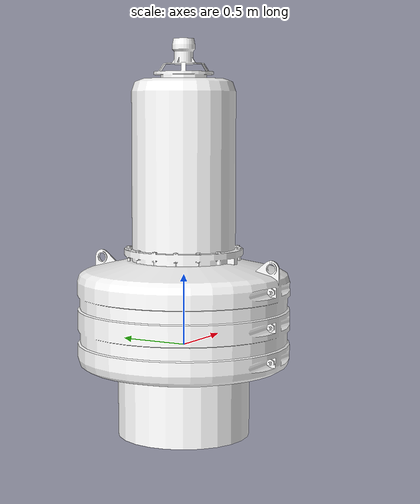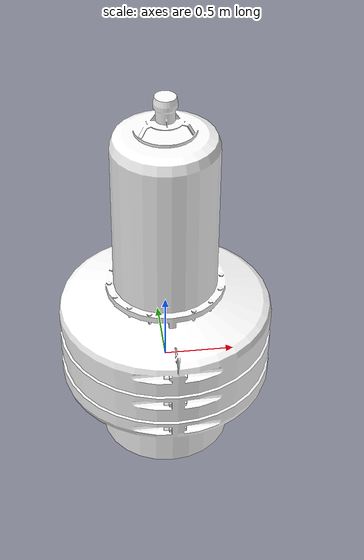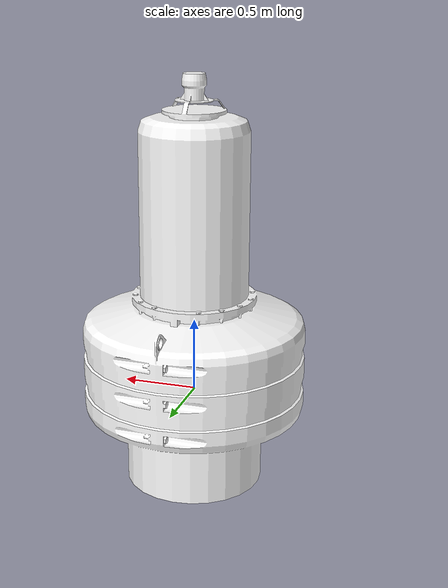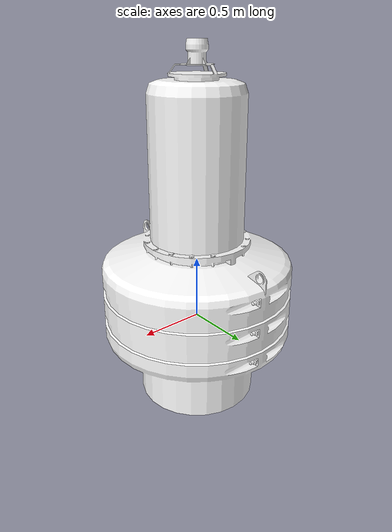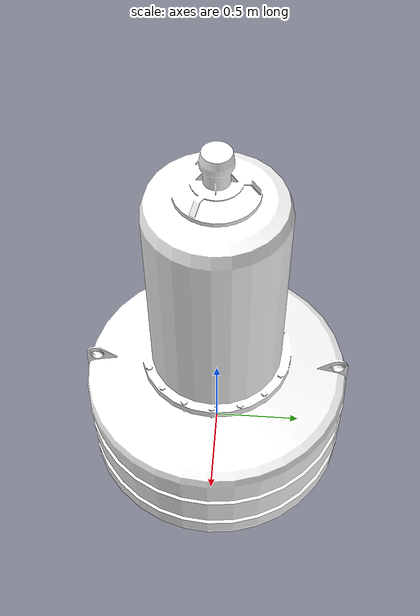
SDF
<?xml version="1.0"?>
<sdf version="1.6">
  <model name="buoy_red">
    <static>false</static>
    <link name="base_link">
      <inertial>
        <pose>0 0 0 0 0 0</pose>
        <mass>355</mass>
        <inertia>
          <ixx>142.0</ixx>
          <ixy>0</ixy>
          <ixz>0</ixz>
          <iyy>142.0</iyy>
          <iyz>0</iyz>
          <izz>63</izz>
        </inertia>
      </inertial>
      <collision name="collision_inner">
        <pose>0 0 1.225 0 0 0</pose>
        <geometry>
          <cylinder>
            <radius>0.425</radius>
            <length>1.55</length>
          </cylinder>
        </geometry>
      </collision>
      <collision name="collision_outer">
        <pose>0 0 0.2 0 0 0</pose>
        <geometry>
          <cylinder>
            <radius>0.75</radius>
            <length>0.9</length>
          </cylinder>
        </geometry>
      </collision>
      <visual name="buoy_red_visual">
        <geometry>
          <mesh>
            <uri>model://buoy_red/meshes/Buoy01.dae</uri>
          </mesh>
        </geometry>
        <material>
          <diffuse>1.0 1.0 1.0</diffuse>
          <specular>1.0 1.0 1.0</specular>
          <pbr>
            <metal>
              <albedo_map>model://buoy_red/materials/textures/Buoy01_Albedo.png</albedo_map>
              <normal_map>model://buoy_red/materials/textures/Buoy01_Normal.png</normal_map>
              <metalness_map>model://buoy_red/materials/textures/Buoy01_Metalness.png</metalness_map>
              <roughness_map>model://buoy_red/materials/textures/Buoy01_Roughness.png</roughness_map>
              <emissive_map>model://buoy_red/materials/textures/Buoy01_Emissive.png</emissive_map>
            </metal>
          </pbr>
          <!-- fallback to script if no PBR support-->
          <script>
            <uri>model://buoy_red/materials/scripts/</uri>
            <uri>model://buoy_red/materials/textures/</uri>
            <name>UrbanTile/Buoy01_Diffuse</name>
          </script>
        </material>
      </visual>
    </link>
    <plugin name="BuoyancyPlugin" filename="libbuoyancy_gazebo_plugin.so">
      <wave_model>ocean_waves</wave_model>
      <fluid_density>1000</fluid_density>
      <fluid_level>0.0</fluid_level>
      <linear_drag>25.0</linear_drag>
      <angular_drag>2.0</angular_drag>
      <buoyancy name="buoyancy_sphere">
        <link_name>base_link</link_name>
        <pose>0 0 0.2 0 0 0</pose>
        <geometry>
          <cylinder>
            <radius>0.75</radius>
            <length>0.9</length>
          </cylinder>
        </geometry>
      </buoyancy>
    </plugin>
  </model>
</sdf>
